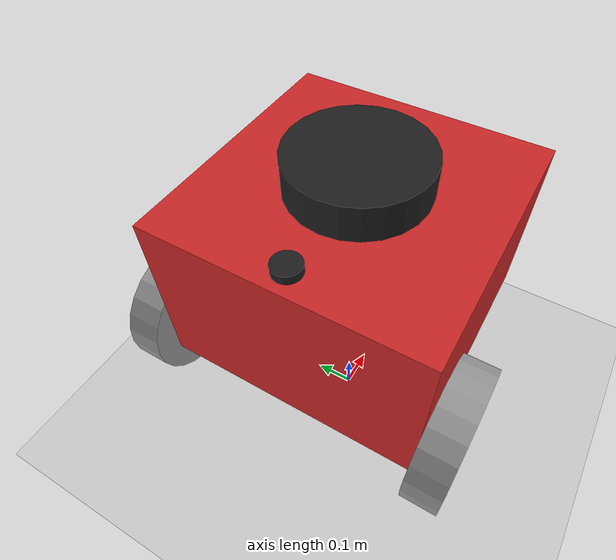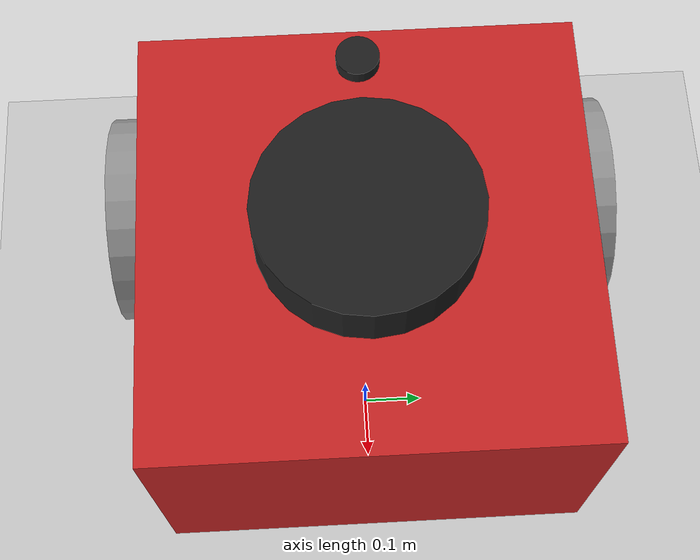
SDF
<sdf version="1.7">
 <world name="default">
  <model name="ground_plane">
   <static>1</static>
   <link name="link">
    <collision name="collision">
     <geometry><plane><normal>0 0 1</normal><size>100 100</size></plane></geometry>
     <surface><friction><ode><mu>100</mu><mu2>50</mu2></ode></friction></surface>
    </collision>
    <visual name="visual">
     <cast_shadows>0</cast_shadows>
     <geometry><plane><normal>0 0 1</normal><size>100 100</size></plane></geometry>
     <material>
      <script><uri>file://media/materials/scripts/gazebo.material</uri><name>Gazebo/Grey</name></script>
     </material>
    </visual>
   </link>
  </model>
  <light name="sun" type="directional">
   <pose>0 0 10 0 -0 0</pose>
   <diffuse>0.8 0.8 0.8 1</diffuse>
   <specular>0.2 0.2 0.2 1</specular>
   <attenuation>
    <range>1000</range>
    <constant>0.9</constant>
    <linear>0.01</linear>
    <quadratic>0.001</quadratic>
   </attenuation>
   <direction>-0.5 0.1 -0.9</direction>
   <spot><inner_angle>0</inner_angle><outer_angle>0</outer_angle><falloff>0</falloff></spot>
  </light>
  <gravity>0 0 -9.8</gravity>
  <magnetic_field>6e-06 2.3e-05 -4.2e-05</magnetic_field>
  <atmosphere type="adiabatic"/>
  <physics name="default_physics" default="0" type="ode">
   <max_step_size>0.001</max_step_size>
   <real_time_factor>1</real_time_factor>
   <real_time_update_rate>1000</real_time_update_rate>
  </physics>
  <scene><ambient>0.4 0.4 0.4 1</ambient><background>0.7 0.7 0.7 1</background><shadows>1</shadows></scene>
  <audio><device>default</device></audio>
  <spherical_coordinates>
   <surface_model>EARTH_WGS84</surface_model>
   <latitude_deg>47.8406</latitude_deg>
   <longitude_deg>10.6199</longitude_deg>
   <elevation>740</elevation>
   <heading_deg>180</heading_deg>
  </spherical_coordinates>
  <model name="mbot">
   <link name="base_footprint">
    <inertial>
     <mass>33</mass>
     <inertia><ixx>0</ixx><ixy>0</ixy><ixz>0</ixz><iyy>0</iyy><iyz>0</iyz><izz>0</izz></inertia>
    </inertial>
    <collision name="base_footprint_fixed_joint_lump__base_link_collision">
     <pose>0 0 0.32 0 -0 0</pose>
     <geometry><box><size>0.6 0.6 0.4</size></box></geometry>
    </collision>
    <collision name="base_footprint_fixed_joint_lump__caster_link_collision_1">
     <pose>0.2 0 0.06 0 -0 0</pose>
     <geometry><sphere><radius>0.06</radius></sphere></geometry>
     <surface><friction><ode><mu>0.02</mu><mu2>0.02</mu2></ode></friction></surface>
    </collision>
    <collision name="base_footprint_fixed_joint_lump__imu_link_collision_2">
     <pose>-0.25 0 0.53 0 -0 0</pose>
     <geometry><cylinder><length>0.02</length><radius>0.03</radius></cylinder></geometry>
    </collision>
    <collision name="base_footprint_fixed_joint_lump__lidar_link_collision_3">
     <pose>0 0 0.56 0 -0 0</pose>
     <geometry><cylinder><length>0.08</length><radius>0.15</radius></cylinder></geometry>
    </collision>
    <visual name="base_footprint_visual"><geometry><box><size>0.001 0.001 0.001</size></box></geometry></visual>
    <visual name="base_footprint_fixed_joint_lump__base_link_visual_1">
     <pose>0 0 0.32 0 -0 0</pose>
     <geometry><box><size>0.6 0.6 0.4</size></box></geometry>
     <material>
      <script><name>Gazebo/red</name><uri>file://media/materials/scripts/gazebo.material</uri></script>
     </material>
    </visual>
    <visual name="base_footprint_fixed_joint_lump__caster_link_visual_2">
     <pose>0.2 0 0.06 0 -0 0</pose>
     <geometry><sphere><radius>0.06</radius></sphere></geometry>
     <material>
      <script><name>Gazebo/Black</name><uri>file://media/materials/scripts/gazebo.material</uri></script>
     </material>
    </visual>
    <visual name="base_footprint_fixed_joint_lump__imu_link_visual_3">
     <pose>-0.25 0 0.53 0 -0 0</pose>
     <geometry><cylinder><length>0.02</length><radius>0.03</radius></cylinder></geometry>
     <material>
      <script><name>Gazebo/Black</name><uri>file://media/materials/scripts/gazebo.material</uri></script>
     </material>
    </visual>
    <visual name="base_footprint_fixed_joint_lump__lidar_link_visual_4">
     <pose>0 0 0.56 0 -0 0</pose>
     <geometry><cylinder><length>0.08</length><radius>0.15</radius></cylinder></geometry>
     <material>
      <script><name>Gazebo/Black</name><uri>file://media/materials/scripts/gazebo.material</uri></script>
     </material>
    </visual>
    <sensor name="imu_sensor" type="imu">
     <plugin name="imu_plugin" filename="libgazebo_ros_imu_sensor.so">
      <ros><namespace>/</namespace><remapping>~/out:=imu</remapping></ros>
      <initial_orientation_as_reference>0</initial_orientation_as_reference>
     </plugin>
     <always_on>1</always_on>
     <update_rate>100</update_rate>
     <visualize>1</visualize>
     <imu>
      <angular_velocity>
       <x>
        <noise type="gaussian">
         <mean>0</mean>
         <stddev>0.0002</stddev>
         <bias_mean>7.5e-06</bias_mean>
         <bias_stddev>8e-07</bias_stddev>
        </noise>
       </x>
       <y>
        <noise type="gaussian">
         <mean>0</mean>
         <stddev>0.0002</stddev>
         <bias_mean>7.5e-06</bias_mean>
         <bias_stddev>8e-07</bias_stddev>
        </noise>
       </y>
       <z>
        <noise type="gaussian">
         <mean>0</mean>
         <stddev>0.0002</stddev>
         <bias_mean>7.5e-06</bias_mean>
         <bias_stddev>8e-07</bias_stddev>
        </noise>
       </z>
      </angular_velocity>
      <linear_acceleration>
       <x>
        <noise type="gaussian">
         <mean>0</mean>
         <stddev>0.017</stddev>
         <bias_mean>0.1</bias_mean>
         <bias_stddev>0.001</bias_stddev>
        </noise>
       </x>
       <y>
        <noise type="gaussian">
         <mean>0</mean>
         <stddev>0.017</stddev>
         <bias_mean>0.1</bias_mean>
         <bias_stddev>0.001</bias_stddev>
        </noise>
       </y>
       <z>
        <noise type="gaussian">
         <mean>0</mean>
         <stddev>0.017</stddev>
         <bias_mean>0.1</bias_mean>
         <bias_stddev>0.001</bias_stddev>
        </noise>
       </z>
      </linear_acceleration>
     </imu>
     <pose>-0.25 0 0.53 0 -0 0</pose>
    </sensor>
    <sensor name="lidar" type="ray">
     <update_rate>20</update_rate>
     <ray>
      <scan>
       <horizontal>
        <samples>360</samples>
        <resolution>1</resolution>
        <min_angle>-3</min_angle>
        <max_angle>3</max_angle>
       </horizontal>
       <vertical><samples>1</samples><min_angle>0</min_angle><max_angle>0</max_angle></vertical>
      </scan>
      <range><min>0.3</min><max>30</max><resolution>0.01</resolution></range>
      <noise><type>gaussian</type><mean>0</mean><stddev>0.01</stddev></noise>
     </ray>
     <plugin name="scan" filename="libgazebo_ros_ray_sensor.so">
      <ros><namespace>/</namespace><remapping>~/out:=scan</remapping></ros>
      <output_type>sensor_msgs/LaserScan</output_type>
      <frame_name>lidar_link</frame_name>
     </plugin>
     <pose>0 0 0.56 0 -0 0</pose>
    </sensor>
   </link>
   <joint name="left_wheel_joint" type="revolute">
    <pose relative_to="base_footprint">-0.2 0.34 0.16 0 -0 0</pose>
    <parent>base_footprint</parent>
    <child>left_wheel_link</child>
    <axis>
     <xyz>0 1 0</xyz>
     <limit><lower>-1e+16</lower><upper>1e+16</upper></limit>
     <dynamics><spring_reference>0</spring_reference><spring_stiffness>0</spring_stiffness></dynamics>
    </axis>
   </joint>
   <link name="left_wheel_link">
    <pose relative_to="left_wheel_joint">0 0 0 0 -0 0</pose>
    <inertial>
     <mass>5</mass>
     <inertia>
      <ixx>0.0346667</ixx>
      <ixy>0</ixy>
      <ixz>0</ixz>
      <iyy>0.0346667</iyy>
      <iyz>0</iyz>
      <izz>0.064</izz>
     </inertia>
    </inertial>
    <collision name="left_wheel_link_collision">
     <pose>0 0 0 1.5708 -0 0</pose>
     <geometry><cylinder><length>0.08</length><radius>0.16</radius></cylinder></geometry>
     <surface><friction><ode><mu>1</mu><mu2>1</mu2></ode></friction></surface>
    </collision>
    <visual name="left_wheel_link_visual">
     <pose>0 0 0 1.5708 -0 0</pose>
     <geometry><cylinder><length>0.08</length><radius>0.16</radius></cylinder></geometry>
     <material>
      <script><name>Gazebo/Gray</name><uri>file://media/materials/scripts/gazebo.material</uri></script>
     </material>
    </visual>
   </link>
   <joint name="right_wheel_joint" type="revolute">
    <pose relative_to="base_footprint">-0.2 -0.34 0.16 0 -0 0</pose>
    <parent>base_footprint</parent>
    <child>right_wheel_link</child>
    <axis>
     <xyz>0 1 0</xyz>
     <limit><lower>-1e+16</lower><upper>1e+16</upper></limit>
     <dynamics><spring_reference>0</spring_reference><spring_stiffness>0</spring_stiffness></dynamics>
    </axis>
   </joint>
   <link name="right_wheel_link">
    <pose relative_to="right_wheel_joint">0 0 0 0 -0 0</pose>
    <inertial>
     <mass>5</mass>
     <inertia>
      <ixx>0.0346667</ixx>
      <ixy>0</ixy>
      <ixz>0</ixz>
      <iyy>0.0346667</iyy>
      <iyz>0</iyz>
      <izz>0.064</izz>
     </inertia>
    </inertial>
    <collision name="right_wheel_link_collision">
     <pose>0 0 0 1.5708 -0 0</pose>
     <geometry><cylinder><length>0.08</length><radius>0.16</radius></cylinder></geometry>
     <surface><friction><ode><mu>1</mu><mu2>1</mu2></ode></friction></surface>
    </collision>
    <visual name="right_wheel_link_visual">
     <pose>0 0 0 1.5708 -0 0</pose>
     <geometry><cylinder><length>0.08</length><radius>0.16</radius></cylinder></geometry>
     <material>
      <script><name>Gazebo/Gray</name><uri>file://media/materials/scripts/gazebo.material</uri></script>
     </material>
    </visual>
   </link>
   <static>0</static>
   <plugin name="differential_drive_controller" filename="libgazebo_ros_diff_drive.so">
    <update_rate>20</update_rate>
    <left_joint>left_wheel_joint</left_joint>
    <right_joint>right_wheel_joint</right_joint>
    <wheel_separation>0.68</wheel_separation>
    <wheel_diameter>0.32</wheel_diameter>
    <max_wheel_torque>20</max_wheel_torque>
    <max_wheel_acceleration>1.0</max_wheel_acceleration>
    <command_topic>cmd_vel</command_topic>
    <publish_odom>1</publish_odom>
    <publish_odom_tf>1</publish_odom_tf>
    <publish_wheel_tf>1</publish_wheel_tf>
    <odometry_topic>odom</odometry_topic>
    <odometry_frame>odom</odometry_frame>
    <robot_base_frame>base_footprint</robot_base_frame>
    <odometry_source>1</odometry_source>
   </plugin>
   <pose>0 0 0.243733 0 -0 0</pose>
  </model>
 </world>
</sdf>
